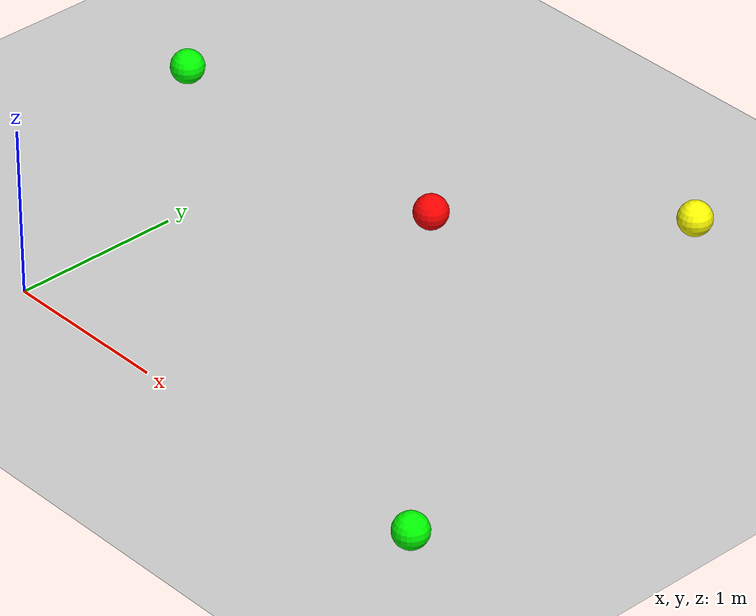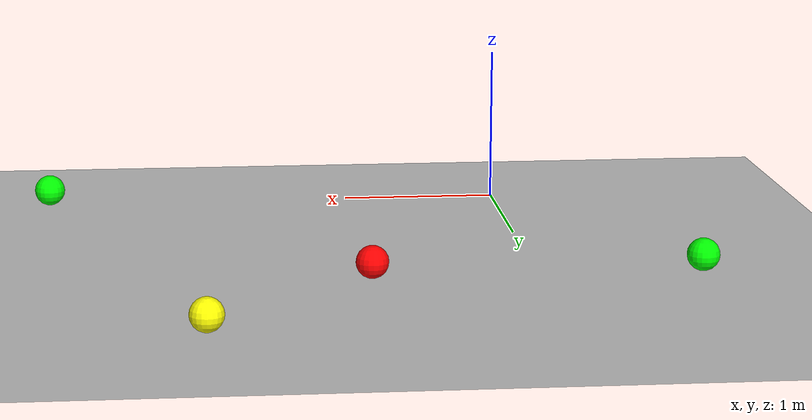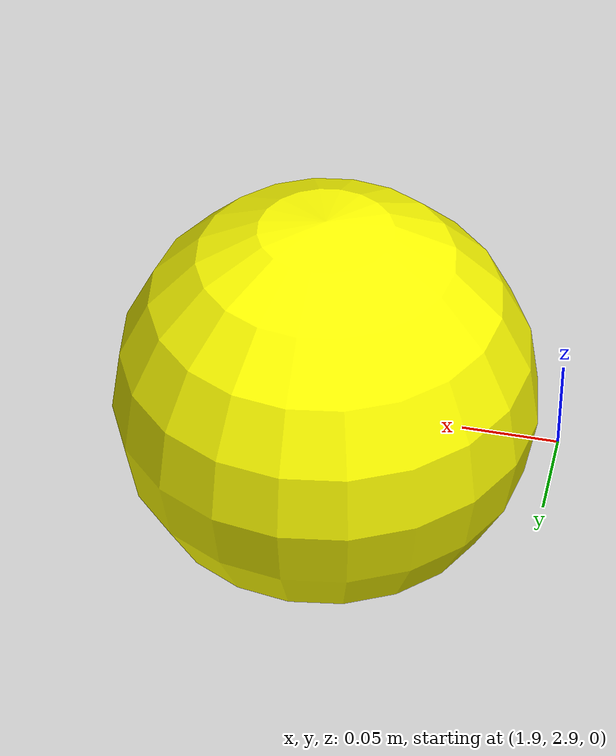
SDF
<sdf version="1.8">
 <world name="world1">
  <physics name="1ms" type="ignored">
   <max_step_size>0.001</max_step_size>
   <real_time_factor>1.0</real_time_factor>
  </physics>
  <plugin filename="libignition-gazebo-physics-system.so" name="ignition::gazebo::systems::Physics"/>
  <plugin filename="libignition-gazebo-user-commands-system.so" name="ignition::gazebo::systems::UserCommands"/>
  <plugin filename="libignition-gazebo-scene-broadcaster-system.so" name="ignition::gazebo::systems::SceneBroadcaster"/>
  <scene><ambient>1.0 1.0 1.0</ambient><background>0.8 0.8 0.8</background><grid>true</grid></scene>
  <light type="directional" name="sun">
   <pose>0 0 10 0 0 0</pose>
   <diffuse>0.8 0.8 0.8 1</diffuse>
   <specular>0.2 0.2 0.2 1</specular>
   <attenuation>
    <range>1000</range>
    <constant>0.9</constant>
    <linear>0.01</linear>
    <quadratic>0.001</quadratic>
   </attenuation>
   <direction>-0.5 0.1 -0.9</direction>
  </light>
  <model name="ground_plane">
   <static>true</static>
   <link name="link">
    <collision name="collision"><geometry><plane><normal>0 0 1</normal></plane></geometry></collision>
    <visual name="visual">
     <geometry><plane><normal>0 0 1</normal><size>100 100</size></plane></geometry>
     <material>
      <ambient>0.8 0.8 0.8 1</ambient>
      <diffuse>0.8 0.8 0.8 1</diffuse>
      <specular>0.8 0.8 0.8 1</specular>
     </material>
    </visual>
   </link>
  </model>
  <include>
   <uri>/home/testeo/src/puzzlebot_description/models/ball/model.sdf</uri>
   <pose>3.0 0 0.1 0 0 0</pose>
  </include>
  <model name="ball_2" canonical_link="sphere2">
   <link name="sphere2">
    <pose>2.0 3.0 0.1 0 0 0</pose>
    <visual name="visual">
     <geometry><sphere><radius>0.1</radius></sphere></geometry>
     <material>
      <ambient>1.0 1.0 0.0 1.0</ambient>
      <diffuse>1.0 1.0 0.0 1.0</diffuse>
      <specular>0.0 0.0 0.0 1.0</specular>
     </material>
    </visual>
    <collision name="collision">
     <geometry><box><size>0.2 0.2 0.2</size></box></geometry>
     <surface>
      <friction><ode><mu>1.0</mu><mu2>1.0</mu2></ode></friction>
      <restitution><coe>0.0</coe></restitution>
     </surface>
    </collision>
    <inertial><mass>1.0</mass><inertia><ixx>0.01</ixx><iyy>0.01</iyy><izz>0.01</izz></inertia></inertial>
   </link>
  </model>
  <model name="ball3" canonical_link="sphere3">
   <link name="sphere3">
    <pose>1.0 2.0 0.1 0 0 0</pose>
    <visual name="visual">
     <geometry><sphere><radius>0.1</radius></sphere></geometry>
     <material>
      <ambient>0.0 1.0 0.0 1.0</ambient>
      <diffuse>1.0 0.0 0.0 1.0</diffuse>
      <specular>0.0 0.0 0.0 1.0</specular>
     </material>
    </visual>
    <collision name="collision">
     <geometry><box><size>0.2 0.2 0.2</size></box></geometry>
     <surface>
      <friction><ode><mu>1.0</mu><mu2>1.0</mu2></ode></friction>
      <restitution><coe>0.0</coe></restitution>
     </surface>
    </collision>
    <inertial><mass>1.0</mass><inertia><ixx>0.01</ixx><iyy>0.01</iyy><izz>0.01</izz></inertia></inertial>
   </link>
  </model>
  <model name="ball_4" canonical_link="sphere4">
   <link name="sphere4">
    <pose>-1.0 2.0 0.1 0 0 0</pose>
    <visual name="visual">
     <geometry><sphere><radius>0.1</radius></sphere></geometry>
     <material>
      <ambient>0.0 1.0 0.0 1.0</ambient>
      <diffuse>0.0 1.0 0.0 1.0</diffuse>
      <specular>0.0 0.5 0.0 1.0</specular>
     </material>
    </visual>
    <collision name="collision">
     <geometry><box><size>0.2 0.2 0.2</size></box></geometry>
     <surface>
      <friction><ode><mu>1.0</mu><mu2>1.0</mu2></ode></friction>
      <restitution><coe>0.0</coe></restitution>
     </surface>
    </collision>
    <inertial><mass>1.0</mass><inertia><ixx>0.01</ixx><iyy>0.01</iyy><izz>0.01</izz></inertia></inertial>
   </link>
  </model>
 </world>
</sdf>

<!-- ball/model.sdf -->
<sdf version='1.4'>
    <model name='ball' canonical_link='sphere'>
        <link name='sphere'>

            <!-- Visual representation of the ball -->
            <visual name='visual'>
                <geometry>
                    <sphere>
                        <radius>0.1</radius>
                    </sphere>
                </geometry>
                <!-- verde -->
                <material>
                    <ambient>0.0 1.0 0.0 1.0</ambient>
                    <diffuse>0.0 1.0 0.0 1.0</diffuse>
                    <specular>0.0 0.5 0.0 1.0</specular>
                </material>
                <!-- amarilla -->
                <!-- roja -->
            </visual>

            <!-- Collision properties of the ball -->
            <collision name='collision'>
                <geometry>
                    <box><size>0.2 0.2 0.2</size></box>
                </geometry>
                <surface>
                    <friction>
                        <ode>
                            <mu>1.0</mu> <!-- Adjust friction as needed -->
                            <mu2>1.0</mu2>
                        </ode>
                    </friction>
                    <restitution>
                        <coe>0.0</coe> <!-- Control bounciness, adjust if needed -->
                    </restitution>
                </surface>
            </collision>

            <!-- Inertial properties -->
            <inertial>
                <mass>1.0</mass>
                <inertia>
                    <ixx>0.01</ixx>
                    <iyy>0.01</iyy>
                    <izz>0.01</izz>
                </inertia>
            </inertial>
        </link>
        <plugin name="gz::sim::systems::VelocityControl" filename="gz-sim-velocity-control-system">
           <target_link>sphere</target_link>
        </plugin>

    </model>
</sdf>
